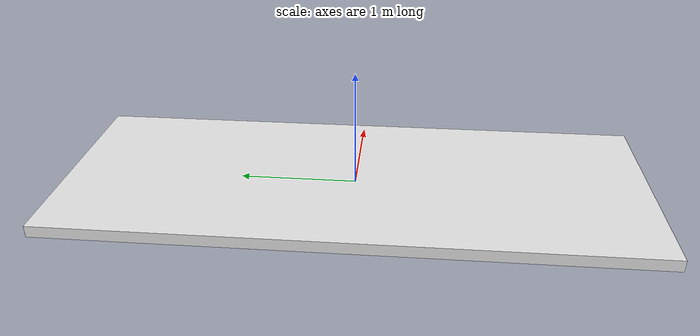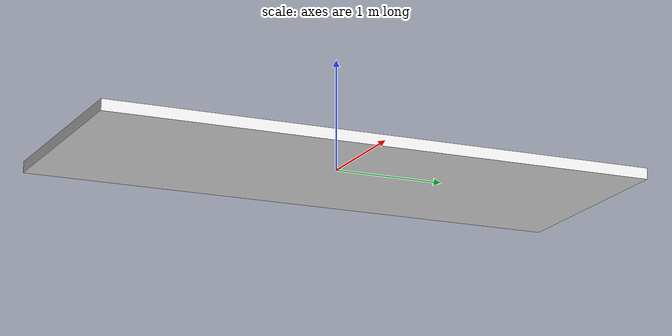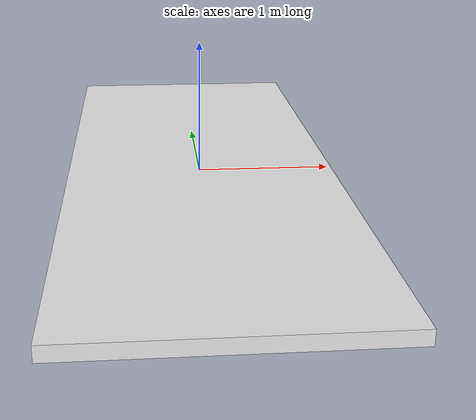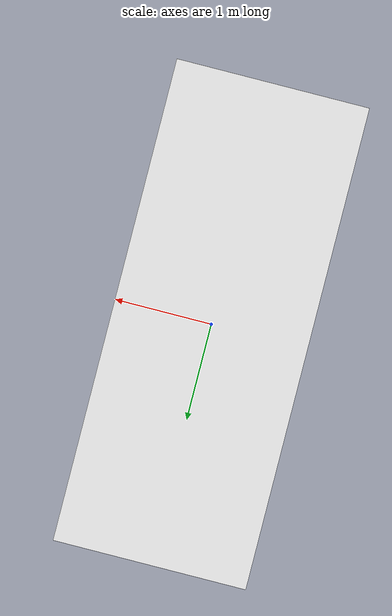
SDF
<?xml version="1.0"?>
<sdf version="1.7">
  <model name="table_extended">
    <pose>0 0 0 0 0 0</pose>
    <link name="table_link">
      <inertial>
        <mass>30</mass>
        <inertia>
          <ixx>1.0</ixx>
          <ixy>0.0</ixy>
          <ixz>0.0</ixz>
          <iyy>1.0</iyy>
          <iyz>0.0</iyz>
          <izz>1.0</izz>
        </inertia>
      </inertial>
      <collision name="box_collision">
        <geometry>
          <box>
            <size>2 5 0.1</size>
          </box>
        </geometry>
      </collision>
      <visual name="box_visual">
        <geometry>
          <box>
            <size>2 5 0.1</size>
          </box>
        </geometry>
        <material>
          <diffuse>0.9 0.9 0.9 1.0</diffuse>
        </material>
      </visual>
    </link>
  </model>
</sdf>
